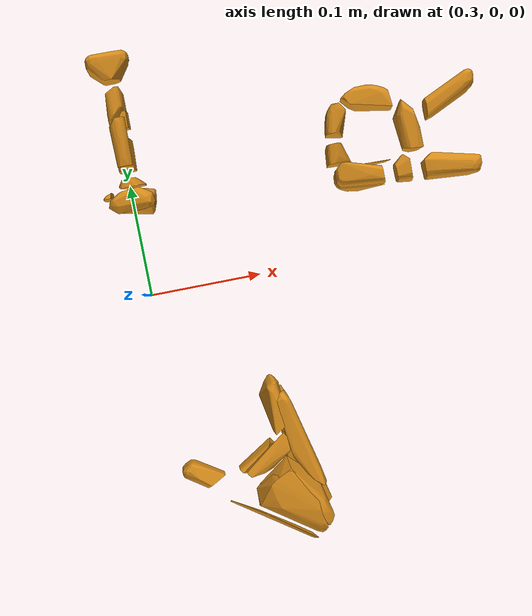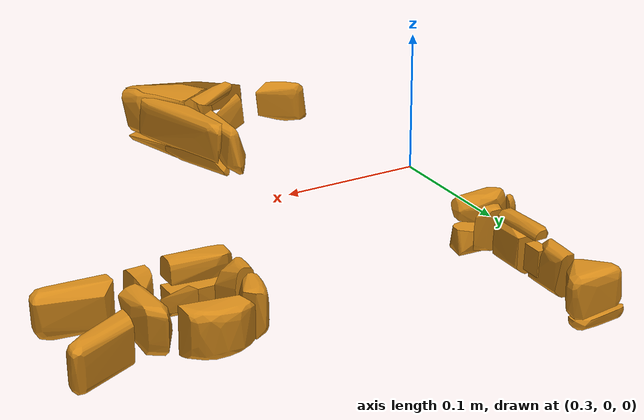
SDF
<?xml version="1.0"?>
<!-- Static letter obstacles (I, R, A) for the C-object scene.
     Same push-anything VHACD pieces as the dynamic letters, welded
     static at resting height on the OIM table. -->
<sdf version="1.7">
  <model name="ira_letter_obstacles">
    <static>true</static>
    <link name="obstacle_I_shape_texture">
      <pose>0.3 0.15 -0.0078 0 0 1.5708</pose>
      <visual name="v0">
        <geometry><mesh><uri>I_shape_texture/I_shape_texture_convex_0.obj</uri></mesh></geometry>
        <material><diffuse>0.85 0.55 0.10 1</diffuse></material>
      </visual>
      <collision name="c0">
        <geometry><mesh><uri>I_shape_texture/I_shape_texture_convex_0.obj</uri></mesh></geometry>
        <drake:proximity_properties xmlns:drake="uri:drake">
          <drake:compliant_hydroelastic/>
          <drake:hydroelastic_modulus> 3.0e7 </drake:hydroelastic_modulus>
          <drake:mesh_resolution_hint> 0.02 </drake:mesh_resolution_hint>
          <drake:hunt_crossley_dissipation>10</drake:hunt_crossley_dissipation>
          <drake:mu_dynamic>0.3</drake:mu_dynamic>
        </drake:proximity_properties>
      </collision>
      <visual name="v1">
        <geometry><mesh><uri>I_shape_texture/I_shape_texture_convex_1.obj</uri></mesh></geometry>
        <material><diffuse>0.85 0.55 0.10 1</diffuse></material>
      </visual>
      <collision name="c1">
        <geometry><mesh><uri>I_shape_texture/I_shape_texture_convex_1.obj</uri></mesh></geometry>
        <drake:proximity_properties xmlns:drake="uri:drake">
          <drake:compliant_hydroelastic/>
          <drake:hydroelastic_modulus> 3.0e7 </drake:hydroelastic_modulus>
          <drake:mesh_resolution_hint> 0.02 </drake:mesh_resolution_hint>
          <drake:hunt_crossley_dissipation>10</drake:hunt_crossley_dissipation>
          <drake:mu_dynamic>0.3</drake:mu_dynamic>
        </drake:proximity_properties>
      </collision>
      <visual name="v2">
        <geometry><mesh><uri>I_shape_texture/I_shape_texture_convex_2.obj</uri></mesh></geometry>
        <material><diffuse>0.85 0.55 0.10 1</diffuse></material>
      </visual>
      <collision name="c2">
        <geometry><mesh><uri>I_shape_texture/I_shape_texture_convex_2.obj</uri></mesh></geometry>
        <drake:proximity_properties xmlns:drake="uri:drake">
          <drake:compliant_hydroelastic/>
          <drake:hydroelastic_modulus> 3.0e7 </drake:hydroelastic_modulus>
          <drake:mesh_resolution_hint> 0.02 </drake:mesh_resolution_hint>
          <drake:hunt_crossley_dissipation>10</drake:hunt_crossley_dissipation>
          <drake:mu_dynamic>0.3</drake:mu_dynamic>
        </drake:proximity_properties>
      </collision>
      <visual name="v3">
        <geometry><mesh><uri>I_shape_texture/I_shape_texture_convex_3.obj</uri></mesh></geometry>
        <material><diffuse>0.85 0.55 0.10 1</diffuse></material>
      </visual>
      <collision name="c3">
        <geometry><mesh><uri>I_shape_texture/I_shape_texture_convex_3.obj</uri></mesh></geometry>
        <drake:proximity_properties xmlns:drake="uri:drake">
          <drake:compliant_hydroelastic/>
          <drake:hydroelastic_modulus> 3.0e7 </drake:hydroelastic_modulus>
          <drake:mesh_resolution_hint> 0.02 </drake:mesh_resolution_hint>
          <drake:hunt_crossley_dissipation>10</drake:hunt_crossley_dissipation>
          <drake:mu_dynamic>0.3</drake:mu_dynamic>
        </drake:proximity_properties>
      </collision>
      <visual name="v4">
        <geometry><mesh><uri>I_shape_texture/I_shape_texture_convex_4.obj</uri></mesh></geometry>
        <material><diffuse>0.85 0.55 0.10 1</diffuse></material>
      </visual>
      <collision name="c4">
        <geometry><mesh><uri>I_shape_texture/I_shape_texture_convex_4.obj</uri></mesh></geometry>
        <drake:proximity_properties xmlns:drake="uri:drake">
          <drake:compliant_hydroelastic/>
          <drake:hydroelastic_modulus> 3.0e7 </drake:hydroelastic_modulus>
          <drake:mesh_resolution_hint> 0.02 </drake:mesh_resolution_hint>
          <drake:hunt_crossley_dissipation>10</drake:hunt_crossley_dissipation>
          <drake:mu_dynamic>0.3</drake:mu_dynamic>
        </drake:proximity_properties>
      </collision>
      <visual name="v5">
        <geometry><mesh><uri>I_shape_texture/I_shape_texture_convex_5.obj</uri></mesh></geometry>
        <material><diffuse>0.85 0.55 0.10 1</diffuse></material>
      </visual>
      <collision name="c5">
        <geometry><mesh><uri>I_shape_texture/I_shape_texture_convex_5.obj</uri></mesh></geometry>
        <drake:proximity_properties xmlns:drake="uri:drake">
          <drake:compliant_hydroelastic/>
          <drake:hydroelastic_modulus> 3.0e7 </drake:hydroelastic_modulus>
          <drake:mesh_resolution_hint> 0.02 </drake:mesh_resolution_hint>
          <drake:hunt_crossley_dissipation>10</drake:hunt_crossley_dissipation>
          <drake:mu_dynamic>0.3</drake:mu_dynamic>
        </drake:proximity_properties>
      </collision>
      <visual name="v6">
        <geometry><mesh><uri>I_shape_texture/I_shape_texture_convex_6.obj</uri></mesh></geometry>
        <material><diffuse>0.85 0.55 0.10 1</diffuse></material>
      </visual>
      <collision name="c6">
        <geometry><mesh><uri>I_shape_texture/I_shape_texture_convex_6.obj</uri></mesh></geometry>
        <drake:proximity_properties xmlns:drake="uri:drake">
          <drake:compliant_hydroelastic/>
          <drake:hydroelastic_modulus> 3.0e7 </drake:hydroelastic_modulus>
          <drake:mesh_resolution_hint> 0.02 </drake:mesh_resolution_hint>
          <drake:hunt_crossley_dissipation>10</drake:hunt_crossley_dissipation>
          <drake:mu_dynamic>0.3</drake:mu_dynamic>
        </drake:proximity_properties>
      </collision>
      <visual name="v7">
        <geometry><mesh><uri>I_shape_texture/I_shape_texture_convex_7.obj</uri></mesh></geometry>
        <material><diffuse>0.85 0.55 0.10 1</diffuse></material>
      </visual>
      <collision name="c7">
        <geometry><mesh><uri>I_shape_texture/I_shape_texture_convex_7.obj</uri></mesh></geometry>
        <drake:proximity_properties xmlns:drake="uri:drake">
          <drake:compliant_hydroelastic/>
          <drake:hydroelastic_modulus> 3.0e7 </drake:hydroelastic_modulus>
          <drake:mesh_resolution_hint> 0.02 </drake:mesh_resolution_hint>
          <drake:hunt_crossley_dissipation>10</drake:hunt_crossley_dissipation>
          <drake:mu_dynamic>0.3</drake:mu_dynamic>
        </drake:proximity_properties>
      </collision>
      <visual name="v8">
        <geometry><mesh><uri>I_shape_texture/I_shape_texture_convex_8.obj</uri></mesh></geometry>
        <material><diffuse>0.85 0.55 0.10 1</diffuse></material>
      </visual>
      <collision name="c8">
        <geometry><mesh><uri>I_shape_texture/I_shape_texture_convex_8.obj</uri></mesh></geometry>
        <drake:proximity_properties xmlns:drake="uri:drake">
          <drake:compliant_hydroelastic/>
          <drake:hydroelastic_modulus> 3.0e7 </drake:hydroelastic_modulus>
          <drake:mesh_resolution_hint> 0.02 </drake:mesh_resolution_hint>
          <drake:hunt_crossley_dissipation>10</drake:hunt_crossley_dissipation>
          <drake:mu_dynamic>0.3</drake:mu_dynamic>
        </drake:proximity_properties>
      </collision>
      <visual name="v9">
        <geometry><mesh><uri>I_shape_texture/I_shape_texture_convex_9.obj</uri></mesh></geometry>
        <material><diffuse>0.85 0.55 0.10 1</diffuse></material>
      </visual>
      <collision name="c9">
        <geometry><mesh><uri>I_shape_texture/I_shape_texture_convex_9.obj</uri></mesh></geometry>
        <drake:proximity_properties xmlns:drake="uri:drake">
          <drake:compliant_hydroelastic/>
          <drake:hydroelastic_modulus> 3.0e7 </drake:hydroelastic_modulus>
          <drake:mesh_resolution_hint> 0.02 </drake:mesh_resolution_hint>
          <drake:hunt_crossley_dissipation>10</drake:hunt_crossley_dissipation>
          <drake:mu_dynamic>0.3</drake:mu_dynamic>
        </drake:proximity_properties>
      </collision>
    </link>
    <link name="obstacle_R_shape_texture">
      <pose>0.55 0.1 -0.0102 0 0 0.0</pose>
      <visual name="v0">
        <geometry><mesh><uri>R_shape_texture/R_shape_texture_convex_0.obj</uri></mesh></geometry>
        <material><diffuse>0.85 0.55 0.10 1</diffuse></material>
      </visual>
      <collision name="c0">
        <geometry><mesh><uri>R_shape_texture/R_shape_texture_convex_0.obj</uri></mesh></geometry>
        <drake:proximity_properties xmlns:drake="uri:drake">
          <drake:compliant_hydroelastic/>
          <drake:hydroelastic_modulus> 3.0e7 </drake:hydroelastic_modulus>
          <drake:mesh_resolution_hint> 0.02 </drake:mesh_resolution_hint>
          <drake:hunt_crossley_dissipation>10</drake:hunt_crossley_dissipation>
          <drake:mu_dynamic>0.3</drake:mu_dynamic>
        </drake:proximity_properties>
      </collision>
      <visual name="v1">
        <geometry><mesh><uri>R_shape_texture/R_shape_texture_convex_1.obj</uri></mesh></geometry>
        <material><diffuse>0.85 0.55 0.10 1</diffuse></material>
      </visual>
      <collision name="c1">
        <geometry><mesh><uri>R_shape_texture/R_shape_texture_convex_1.obj</uri></mesh></geometry>
        <drake:proximity_properties xmlns:drake="uri:drake">
          <drake:compliant_hydroelastic/>
          <drake:hydroelastic_modulus> 3.0e7 </drake:hydroelastic_modulus>
          <drake:mesh_resolution_hint> 0.02 </drake:mesh_resolution_hint>
          <drake:hunt_crossley_dissipation>10</drake:hunt_crossley_dissipation>
          <drake:mu_dynamic>0.3</drake:mu_dynamic>
        </drake:proximity_properties>
      </collision>
      <visual name="v2">
        <geometry><mesh><uri>R_shape_texture/R_shape_texture_convex_2.obj</uri></mesh></geometry>
        <material><diffuse>0.85 0.55 0.10 1</diffuse></material>
      </visual>
      <collision name="c2">
        <geometry><mesh><uri>R_shape_texture/R_shape_texture_convex_2.obj</uri></mesh></geometry>
        <drake:proximity_properties xmlns:drake="uri:drake">
          <drake:compliant_hydroelastic/>
          <drake:hydroelastic_modulus> 3.0e7 </drake:hydroelastic_modulus>
          <drake:mesh_resolution_hint> 0.02 </drake:mesh_resolution_hint>
          <drake:hunt_crossley_dissipation>10</drake:hunt_crossley_dissipation>
          <drake:mu_dynamic>0.3</drake:mu_dynamic>
        </drake:proximity_properties>
      </collision>
      <visual name="v3">
        <geometry><mesh><uri>R_shape_texture/R_shape_texture_convex_3.obj</uri></mesh></geometry>
        <material><diffuse>0.85 0.55 0.10 1</diffuse></material>
      </visual>
      <collision name="c3">
        <geometry><mesh><uri>R_shape_texture/R_shape_texture_convex_3.obj</uri></mesh></geometry>
        <drake:proximity_properties xmlns:drake="uri:drake">
          <drake:compliant_hydroelastic/>
          <drake:hydroelastic_modulus> 3.0e7 </drake:hydroelastic_modulus>
          <drake:mesh_resolution_hint> 0.02 </drake:mesh_resolution_hint>
          <drake:hunt_crossley_dissipation>10</drake:hunt_crossley_dissipation>
          <drake:mu_dynamic>0.3</drake:mu_dynamic>
        </drake:proximity_properties>
      </collision>
      <visual name="v4">
        <geometry><mesh><uri>R_shape_texture/R_shape_texture_convex_4.obj</uri></mesh></geometry>
        <material><diffuse>0.85 0.55 0.10 1</diffuse></material>
      </visual>
      <collision name="c4">
        <geometry><mesh><uri>R_shape_texture/R_shape_texture_convex_4.obj</uri></mesh></geometry>
        <drake:proximity_properties xmlns:drake="uri:drake">
          <drake:compliant_hydroelastic/>
          <drake:hydroelastic_modulus> 3.0e7 </drake:hydroelastic_modulus>
          <drake:mesh_resolution_hint> 0.02 </drake:mesh_resolution_hint>
          <drake:hunt_crossley_dissipation>10</drake:hunt_crossley_dissipation>
          <drake:mu_dynamic>0.3</drake:mu_dynamic>
        </drake:proximity_properties>
      </collision>
      <visual name="v5">
        <geometry><mesh><uri>R_shape_texture/R_shape_texture_convex_5.obj</uri></mesh></geometry>
        <material><diffuse>0.85 0.55 0.10 1</diffuse></material>
      </visual>
      <collision name="c5">
        <geometry><mesh><uri>R_shape_texture/R_shape_texture_convex_5.obj</uri></mesh></geometry>
        <drake:proximity_properties xmlns:drake="uri:drake">
          <drake:compliant_hydroelastic/>
          <drake:hydroelastic_modulus> 3.0e7 </drake:hydroelastic_modulus>
          <drake:mesh_resolution_hint> 0.02 </drake:mesh_resolution_hint>
          <drake:hunt_crossley_dissipation>10</drake:hunt_crossley_dissipation>
          <drake:mu_dynamic>0.3</drake:mu_dynamic>
        </drake:proximity_properties>
      </collision>
      <visual name="v6">
        <geometry><mesh><uri>R_shape_texture/R_shape_texture_convex_6.obj</uri></mesh></geometry>
        <material><diffuse>0.85 0.55 0.10 1</diffuse></material>
      </visual>
      <collision name="c6">
        <geometry><mesh><uri>R_shape_texture/R_shape_texture_convex_6.obj</uri></mesh></geometry>
        <drake:proximity_properties xmlns:drake="uri:drake">
          <drake:compliant_hydroelastic/>
          <drake:hydroelastic_modulus> 3.0e7 </drake:hydroelastic_modulus>
          <drake:mesh_resolution_hint> 0.02 </drake:mesh_resolution_hint>
          <drake:hunt_crossley_dissipation>10</drake:hunt_crossley_dissipation>
          <drake:mu_dynamic>0.3</drake:mu_dynamic>
        </drake:proximity_properties>
      </collision>
      <visual name="v7">
        <geometry><mesh><uri>R_shape_texture/R_shape_texture_convex_7.obj</uri></mesh></geometry>
        <material><diffuse>0.85 0.55 0.10 1</diffuse></material>
      </visual>
      <collision name="c7">
        <geometry><mesh><uri>R_shape_texture/R_shape_texture_convex_7.obj</uri></mesh></geometry>
        <drake:proximity_properties xmlns:drake="uri:drake">
          <drake:compliant_hydroelastic/>
          <drake:hydroelastic_modulus> 3.0e7 </drake:hydroelastic_modulus>
          <drake:mesh_resolution_hint> 0.02 </drake:mesh_resolution_hint>
          <drake:hunt_crossley_dissipation>10</drake:hunt_crossley_dissipation>
          <drake:mu_dynamic>0.3</drake:mu_dynamic>
        </drake:proximity_properties>
      </collision>
      <visual name="v8">
        <geometry><mesh><uri>R_shape_texture/R_shape_texture_convex_8.obj</uri></mesh></geometry>
        <material><diffuse>0.85 0.55 0.10 1</diffuse></material>
      </visual>
      <collision name="c8">
        <geometry><mesh><uri>R_shape_texture/R_shape_texture_convex_8.obj</uri></mesh></geometry>
        <drake:proximity_properties xmlns:drake="uri:drake">
          <drake:compliant_hydroelastic/>
          <drake:hydroelastic_modulus> 3.0e7 </drake:hydroelastic_modulus>
          <drake:mesh_resolution_hint> 0.02 </drake:mesh_resolution_hint>
          <drake:hunt_crossley_dissipation>10</drake:hunt_crossley_dissipation>
          <drake:mu_dynamic>0.3</drake:mu_dynamic>
        </drake:proximity_properties>
      </collision>
      <visual name="v9">
        <geometry><mesh><uri>R_shape_texture/R_shape_texture_convex_9.obj</uri></mesh></geometry>
        <material><diffuse>0.85 0.55 0.10 1</diffuse></material>
      </visual>
      <collision name="c9">
        <geometry><mesh><uri>R_shape_texture/R_shape_texture_convex_9.obj</uri></mesh></geometry>
        <drake:proximity_properties xmlns:drake="uri:drake">
          <drake:compliant_hydroelastic/>
          <drake:hydroelastic_modulus> 3.0e7 </drake:hydroelastic_modulus>
          <drake:mesh_resolution_hint> 0.02 </drake:mesh_resolution_hint>
          <drake:hunt_crossley_dissipation>10</drake:hunt_crossley_dissipation>
          <drake:mu_dynamic>0.3</drake:mu_dynamic>
        </drake:proximity_properties>
      </collision>
    </link>
    <link name="obstacle_A_shape_video">
      <pose>0.38 -0.18 -0.0056 0 0 0.6</pose>
      <visual name="v0">
        <geometry><mesh><uri>A_shape_video/A_shape_video_convex_0.obj</uri></mesh></geometry>
        <material><diffuse>0.85 0.55 0.10 1</diffuse></material>
      </visual>
      <collision name="c0">
        <geometry><mesh><uri>A_shape_video/A_shape_video_convex_0.obj</uri></mesh></geometry>
        <drake:proximity_properties xmlns:drake="uri:drake">
          <drake:compliant_hydroelastic/>
          <drake:hydroelastic_modulus> 3.0e7 </drake:hydroelastic_modulus>
          <drake:mesh_resolution_hint> 0.02 </drake:mesh_resolution_hint>
          <drake:hunt_crossley_dissipation>10</drake:hunt_crossley_dissipation>
          <drake:mu_dynamic>0.3</drake:mu_dynamic>
        </drake:proximity_properties>
      </collision>
      <visual name="v1">
        <geometry><mesh><uri>A_shape_video/A_shape_video_convex_1.obj</uri></mesh></geometry>
        <material><diffuse>0.85 0.55 0.10 1</diffuse></material>
      </visual>
      <collision name="c1">
        <geometry><mesh><uri>A_shape_video/A_shape_video_convex_1.obj</uri></mesh></geometry>
        <drake:proximity_properties xmlns:drake="uri:drake">
          <drake:compliant_hydroelastic/>
          <drake:hydroelastic_modulus> 3.0e7 </drake:hydroelastic_modulus>
          <drake:mesh_resolution_hint> 0.02 </drake:mesh_resolution_hint>
          <drake:hunt_crossley_dissipation>10</drake:hunt_crossley_dissipation>
          <drake:mu_dynamic>0.3</drake:mu_dynamic>
        </drake:proximity_properties>
      </collision>
      <visual name="v2">
        <geometry><mesh><uri>A_shape_video/A_shape_video_convex_2.obj</uri></mesh></geometry>
        <material><diffuse>0.85 0.55 0.10 1</diffuse></material>
      </visual>
      <collision name="c2">
        <geometry><mesh><uri>A_shape_video/A_shape_video_convex_2.obj</uri></mesh></geometry>
        <drake:proximity_properties xmlns:drake="uri:drake">
          <drake:compliant_hydroelastic/>
          <drake:hydroelastic_modulus> 3.0e7 </drake:hydroelastic_modulus>
          <drake:mesh_resolution_hint> 0.02 </drake:mesh_resolution_hint>
          <drake:hunt_crossley_dissipation>10</drake:hunt_crossley_dissipation>
          <drake:mu_dynamic>0.3</drake:mu_dynamic>
        </drake:proximity_properties>
      </collision>
      <visual name="v3">
        <geometry><mesh><uri>A_shape_video/A_shape_video_convex_3.obj</uri></mesh></geometry>
        <material><diffuse>0.85 0.55 0.10 1</diffuse></material>
      </visual>
      <collision name="c3">
        <geometry><mesh><uri>A_shape_video/A_shape_video_convex_3.obj</uri></mesh></geometry>
        <drake:proximity_properties xmlns:drake="uri:drake">
          <drake:compliant_hydroelastic/>
          <drake:hydroelastic_modulus> 3.0e7 </drake:hydroelastic_modulus>
          <drake:mesh_resolution_hint> 0.02 </drake:mesh_resolution_hint>
          <drake:hunt_crossley_dissipation>10</drake:hunt_crossley_dissipation>
          <drake:mu_dynamic>0.3</drake:mu_dynamic>
        </drake:proximity_properties>
      </collision>
      <visual name="v4">
        <geometry><mesh><uri>A_shape_video/A_shape_video_convex_4.obj</uri></mesh></geometry>
        <material><diffuse>0.85 0.55 0.10 1</diffuse></material>
      </visual>
      <collision name="c4">
        <geometry><mesh><uri>A_shape_video/A_shape_video_convex_4.obj</uri></mesh></geometry>
        <drake:proximity_properties xmlns:drake="uri:drake">
          <drake:compliant_hydroelastic/>
          <drake:hydroelastic_modulus> 3.0e7 </drake:hydroelastic_modulus>
          <drake:mesh_resolution_hint> 0.02 </drake:mesh_resolution_hint>
          <drake:hunt_crossley_dissipation>10</drake:hunt_crossley_dissipation>
          <drake:mu_dynamic>0.3</drake:mu_dynamic>
        </drake:proximity_properties>
      </collision>
      <visual name="v5">
        <geometry><mesh><uri>A_shape_video/A_shape_video_convex_5.obj</uri></mesh></geometry>
        <material><diffuse>0.85 0.55 0.10 1</diffuse></material>
      </visual>
      <collision name="c5">
        <geometry><mesh><uri>A_shape_video/A_shape_video_convex_5.obj</uri></mesh></geometry>
        <drake:proximity_properties xmlns:drake="uri:drake">
          <drake:compliant_hydroelastic/>
          <drake:hydroelastic_modulus> 3.0e7 </drake:hydroelastic_modulus>
          <drake:mesh_resolution_hint> 0.02 </drake:mesh_resolution_hint>
          <drake:hunt_crossley_dissipation>10</drake:hunt_crossley_dissipation>
          <drake:mu_dynamic>0.3</drake:mu_dynamic>
        </drake:proximity_properties>
      </collision>
      <visual name="v6">
        <geometry><mesh><uri>A_shape_video/A_shape_video_convex_6.obj</uri></mesh></geometry>
        <material><diffuse>0.85 0.55 0.10 1</diffuse></material>
      </visual>
      <collision name="c6">
        <geometry><mesh><uri>A_shape_video/A_shape_video_convex_6.obj</uri></mesh></geometry>
        <drake:proximity_properties xmlns:drake="uri:drake">
          <drake:compliant_hydroelastic/>
          <drake:hydroelastic_modulus> 3.0e7 </drake:hydroelastic_modulus>
          <drake:mesh_resolution_hint> 0.02 </drake:mesh_resolution_hint>
          <drake:hunt_crossley_dissipation>10</drake:hunt_crossley_dissipation>
          <drake:mu_dynamic>0.3</drake:mu_dynamic>
        </drake:proximity_properties>
      </collision>
      <visual name="v7">
        <geometry><mesh><uri>A_shape_video/A_shape_video_convex_7.obj</uri></mesh></geometry>
        <material><diffuse>0.85 0.55 0.10 1</diffuse></material>
      </visual>
      <collision name="c7">
        <geometry><mesh><uri>A_shape_video/A_shape_video_convex_7.obj</uri></mesh></geometry>
        <drake:proximity_properties xmlns:drake="uri:drake">
          <drake:compliant_hydroelastic/>
          <drake:hydroelastic_modulus> 3.0e7 </drake:hydroelastic_modulus>
          <drake:mesh_resolution_hint> 0.02 </drake:mesh_resolution_hint>
          <drake:hunt_crossley_dissipation>10</drake:hunt_crossley_dissipation>
          <drake:mu_dynamic>0.3</drake:mu_dynamic>
        </drake:proximity_properties>
      </collision>
      <visual name="v8">
        <geometry><mesh><uri>A_shape_video/A_shape_video_convex_8.obj</uri></mesh></geometry>
        <material><diffuse>0.85 0.55 0.10 1</diffuse></material>
      </visual>
      <collision name="c8">
        <geometry><mesh><uri>A_shape_video/A_shape_video_convex_8.obj</uri></mesh></geometry>
        <drake:proximity_properties xmlns:drake="uri:drake">
          <drake:compliant_hydroelastic/>
          <drake:hydroelastic_modulus> 3.0e7 </drake:hydroelastic_modulus>
          <drake:mesh_resolution_hint> 0.02 </drake:mesh_resolution_hint>
          <drake:hunt_crossley_dissipation>10</drake:hunt_crossley_dissipation>
          <drake:mu_dynamic>0.3</drake:mu_dynamic>
        </drake:proximity_properties>
      </collision>
      <visual name="v9">
        <geometry><mesh><uri>A_shape_video/A_shape_video_convex_9.obj</uri></mesh></geometry>
        <material><diffuse>0.85 0.55 0.10 1</diffuse></material>
      </visual>
      <collision name="c9">
        <geometry><mesh><uri>A_shape_video/A_shape_video_convex_9.obj</uri></mesh></geometry>
        <drake:proximity_properties xmlns:drake="uri:drake">
          <drake:compliant_hydroelastic/>
          <drake:hydroelastic_modulus> 3.0e7 </drake:hydroelastic_modulus>
          <drake:mesh_resolution_hint> 0.02 </drake:mesh_resolution_hint>
          <drake:hunt_crossley_dissipation>10</drake:hunt_crossley_dissipation>
          <drake:mu_dynamic>0.3</drake:mu_dynamic>
        </drake:proximity_properties>
      </collision>
    </link>
  </model>
</sdf>
